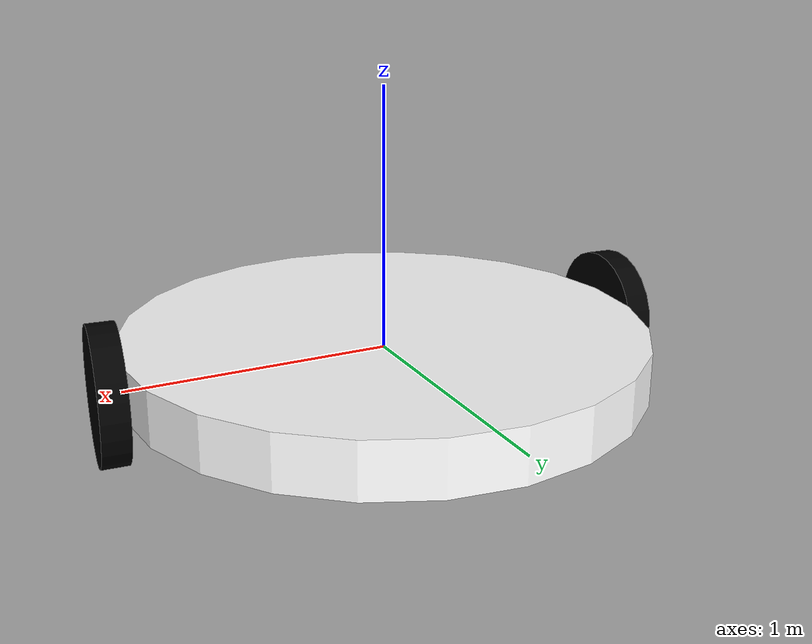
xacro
<?xml version="1.0"?>
<robot xmlns:xacro="http://ros.org/wiki/xacro" name="medor">

<xacro:include filename="$(find ultrasonic_sensor)/urdf/common.xacro"/>
<!-- Include the base robot -->
<xacro:include filename="$(find ultrasonic_sensor)/urdf/mobile_base.xacro"/>

<!-- Include the standalone arm -->

</robot>

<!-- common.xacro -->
<robot xmlns:xacro="http://ros.org/wiki/xacro">

  <!-- Define Colors (Materials) -->
  <material name="blue">
    <color rgba="0 0 0.8 1"/>
  </material>

  <material name="black">
    <color rgba="0 0 0 1"/>
  </material>

  <material name="white">
    <color rgba="1 1 1 1"/>
  </material>

  <material name="red">
    <color rgba="1 0 0 1"/>
  </material>

  <material name="green">
    <color rgba="0 1 0 1"/>
  </material>

  <material name="yellow">
    <color rgba="1 1 0 1"/>
  </material>

  <!-- Define a Macro for Wheels -->
  <!-- The macro allows for reuse in the robot's Xacro file to define wheels -->
  <xacro:macro name="wheel" params="name color radius length xyz rpy">
    <link name="${name}">
      <visual>
        <origin xyz="${xyz}" rpy="${rpy}"/>
        <geometry>
          <cylinder length="${length}" radius="${radius}"/>
        </geometry>
        <material name="${color}"/>
      </visual>
      <collision>
        <origin xyz="${xyz}" rpy="${rpy}"/>
        <geometry>
          <cylinder length="${length}" radius="${radius}"/>
        </geometry>
      </collision>
      <inertial>
        <mass value="1"/>
        <inertia ixx="1e-3" ixy="0.0" ixz="0.0" iyy="1e-3" iyz="0.0" izz="1e-3"/>
      </inertial>
    </link>
  </xacro:macro>

  <!-- Define a Macro for Joints -->
  <!-- This macro allows for easy reuse of joint definitions -->
  <xacro:macro name="wheel_joint" params="name parent_link child_link axis_xyz origin_xyz origin_rpy">
    <joint name="${name}" type="continuous">
      <axis xyz="${axis_xyz}"/>
      <parent link="${parent_link}"/>
      <child link="${child_link}"/>
      <origin xyz="${origin_xyz}" rpy="${origin_rpy}"/>
    </joint>
  </xacro:macro>

</robot>

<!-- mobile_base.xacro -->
<robot xmlns:xacro="http://ros.org/wiki/xacro" name="medor">

  <!-- Include the common.xacro file -->
  <xacro:include filename="$(find ultrasonic_sensor)/urdf/mobile_base.gazebo.xacro"/>

  <!-- Base Footprint (Empty parent for ground projection) -->
  <link name="base_footprint">
    <!-- No visual, collision, or inertial properties as it's an "empty" link -->
  </link>

  <!-- Base Link -->
  <link name="base_link">
    <visual>
      <geometry>
        <cylinder length="0.2" radius="1"/>
      </geometry>
      <material name="white"/>  <!-- Use material defined in common.xacro -->
    </visual>
    <collision>
      <geometry>
        <cylinder length="0.2" radius="1"/>
      </geometry>
    </collision>
    <inertial>
      <mass value="10.0"/>
      <inertia ixx="1e-3" ixy="0.0" ixz="0.0" iyy="0.0" iyz="0.0" izz="1e-3"/>
    </inertial>
  </link>

  <!-- Joint between base_footprint and base_link -->
  <joint name="base_footprint_joint" type="fixed">
    <parent link="base_footprint"/>
    <child link="base_link"/>
    <!-- The origin ensures the base_footprint is directly beneath base_link -->
    <origin xyz="0 0 0" rpy="0 0 0"/>
  </joint>

  <!-- Left Wheel -->
  <xacro:wheel name="left_wheel" color="black" radius="0.25" length="0.1" xyz="0 -0.05 0" rpy="1.57075 0 0"/>

  <!-- Left Wheel Joint -->
  <xacro:wheel_joint name="left_wheel_joint" parent_link="base_link" child_link="left_wheel" axis_xyz="0 1 0" origin_xyz="1 0 0" origin_rpy="0 0 1.5"/>

  <!-- Right Wheel -->
  <xacro:wheel name="right_wheel" color="black" radius="0.25" length="0.1" xyz="0 0.05 0" rpy="1.57075 0 0"/>

  <!-- Right Wheel Joint -->
  <xacro:wheel_joint name="right_wheel_joint" parent_link="base_link" child_link="right_wheel" axis_xyz="0 1 0" origin_xyz="-1 0 0" origin_rpy="0 0 1.5"/>

</robot>
